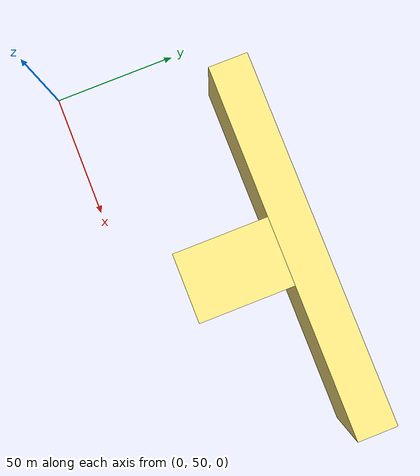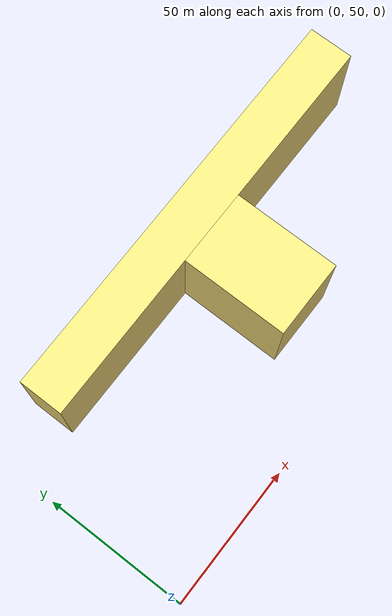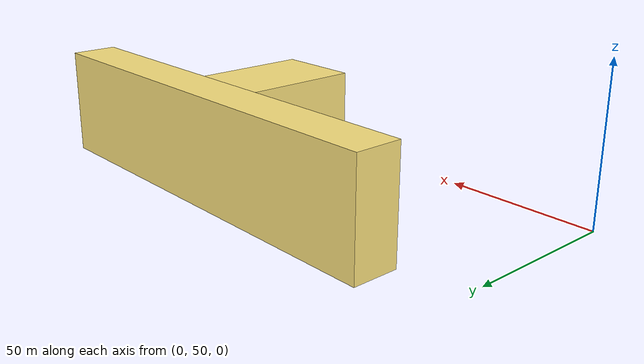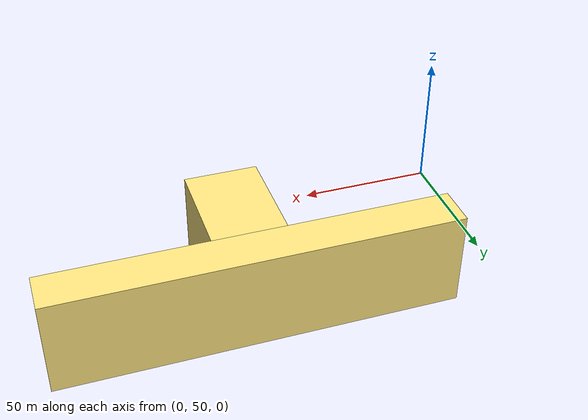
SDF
<?xml version='1.0'?>
<sdf version='1.6'>
  <model name='menzies'>
    <link name='link_1'>
      <inertial>
        <mass>1</mass>
        <inertia>
          <ixx>0.166667</ixx>
          <ixy>0</ixy>
          <ixz>0</ixz>
          <iyy>0.166667</iyy>
          <iyz>0</iyz>
          <izz>0.166667</izz>
        </inertia>
        <pose frame=''>0 0 0 0 -0 0</pose>
      </inertial>
      <pose frame=''>0 12.75 0 0 -0 0</pose>
      <gravity>1</gravity>
      <self_collide>0</self_collide>
      <kinematic>0</kinematic>
      <enable_wind>0</enable_wind>
      <visual name='visual'>
        <pose frame=''>0 0 0 0 -0 0</pose>
        <geometry>
          <box>
            <size>141 15 35</size>
          </box>
        </geometry>
        <material>
          <lighting>1</lighting>
          <script>
            <uri>file://media/materials/scripts/gazebo.material</uri>
            <name>Gazebo/Grey</name>
          </script>
          <shader type='vertex'>
            <normal_map>__default__</normal_map>
          </shader>
          <ambient>1 0.9 0.5 1</ambient>
          <diffuse>0.7 0.7 0.7 1</diffuse>
          <specular>0.01 0.01 0.01 1</specular>
          <emissive>0 0 0 1</emissive>
        </material>
        <transparency>0</transparency>
        <cast_shadows>1</cast_shadows>
      </visual>
      <collision name='collision'>
        <laser_retro>0</laser_retro>
        <max_contacts>10</max_contacts>
        <pose frame=''>0 0 0 0 -0 0</pose>
        <geometry>
          <box>
            <size>1 1 1</size>
          </box>
        </geometry>
        <surface>
          <friction>
            <ode>
              <mu>1</mu>
              <mu2>1</mu2>
              <fdir1>0 0 0</fdir1>
              <slip1>0</slip1>
              <slip2>0</slip2>
            </ode>
            <torsional>
              <coefficient>1</coefficient>
              <patch_radius>0</patch_radius>
              <surface_radius>0</surface_radius>
              <use_patch_radius>1</use_patch_radius>
              <ode>
                <slip>0</slip>
              </ode>
            </torsional>
          </friction>
          <bounce>
            <restitution_coefficient>0</restitution_coefficient>
            <threshold>1e+06</threshold>
          </bounce>
          <contact>
            <collide_without_contact>0</collide_without_contact>
            <collide_without_contact_bitmask>1</collide_without_contact_bitmask>
            <collide_bitmask>1</collide_bitmask>
            <ode>
              <soft_cfm>0</soft_cfm>
              <soft_erp>0.2</soft_erp>
              <kp>1e+13</kp>
              <kd>1</kd>
              <max_vel>0.01</max_vel>
              <min_depth>0</min_depth>
            </ode>
            <bullet>
              <split_impulse>1</split_impulse>
              <split_impulse_penetration_threshold>-0.01</split_impulse_penetration_threshold>
              <soft_cfm>0</soft_cfm>
              <soft_erp>0.2</soft_erp>
              <kp>1e+13</kp>
              <kd>1</kd>
            </bullet>
          </contact>
        </surface>
      </collision>
    </link>
    <link name='link_2'>
      <inertial>
        <mass>1</mass>
        <inertia>
          <ixx>0.166667</ixx>
          <ixy>0</ixy>
          <ixz>0</ixz>
          <iyy>0.166667</iyy>
          <iyz>0</iyz>
          <izz>0.166667</izz>
        </inertia>
        <pose frame=''>0 0 0 0 -0 0</pose>
      </inertial>
      <pose frame=''>0 -12.75 0 0 -0 0</pose>
      <gravity>1</gravity>
      <self_collide>0</self_collide>
      <kinematic>0</kinematic>
      <enable_wind>0</enable_wind>
      <visual name='visual'>
        <pose frame=''>0 0 0 0 -0 0</pose>
        <geometry>
          <box>
            <size>26 36 35</size>
          </box>
        </geometry>
        <material>
          <lighting>1</lighting>
          <script>
            <uri>file://media/materials/scripts/gazebo.material</uri>
            <name>Gazebo/Grey</name>
          </script>
          <shader type='vertex'>
            <normal_map>__default__</normal_map>
          </shader>
          <ambient>1 0.9 0.5 1</ambient>
          <diffuse>0.7 0.7 0.7 1</diffuse>
          <specular>0.01 0.01 0.01 1</specular>
          <emissive>0 0 0 1</emissive>
        </material>
        <transparency>0</transparency>
        <cast_shadows>1</cast_shadows>
      </visual>
      <collision name='collision'>
        <laser_retro>0</laser_retro>
        <max_contacts>10</max_contacts>
        <pose frame=''>0 0 0 0 -0 0</pose>
        <geometry>
          <box>
            <size>1 1 1</size>
          </box>
        </geometry>
        <surface>
          <friction>
            <ode>
              <mu>1</mu>
              <mu2>1</mu2>
              <fdir1>0 0 0</fdir1>
              <slip1>0</slip1>
              <slip2>0</slip2>
            </ode>
            <torsional>
              <coefficient>1</coefficient>
              <patch_radius>0</patch_radius>
              <surface_radius>0</surface_radius>
              <use_patch_radius>1</use_patch_radius>
              <ode>
                <slip>0</slip>
              </ode>
            </torsional>
          </friction>
          <bounce>
            <restitution_coefficient>0</restitution_coefficient>
            <threshold>1e+06</threshold>
          </bounce>
          <contact>
            <collide_without_contact>0</collide_without_contact>
            <collide_without_contact_bitmask>1</collide_without_contact_bitmask>
            <collide_bitmask>1</collide_bitmask>
            <ode>
              <soft_cfm>0</soft_cfm>
              <soft_erp>0.2</soft_erp>
              <kp>1e+13</kp>
              <kd>1</kd>
              <max_vel>0.01</max_vel>
              <min_depth>0</min_depth>
            </ode>
            <bullet>
              <split_impulse>1</split_impulse>
              <split_impulse_penetration_threshold>-0.01</split_impulse_penetration_threshold>
              <soft_cfm>0</soft_cfm>
              <soft_erp>0.2</soft_erp>
              <kp>1e+13</kp>
              <kd>1</kd>
            </bullet>
          </contact>
        </surface>
      </collision>
    </link>
    <static>1</static>
    <allow_auto_disable>1</allow_auto_disable>
    <pose>91 103.5 17.5 0 0 0</pose>
  </model>
</sdf>
